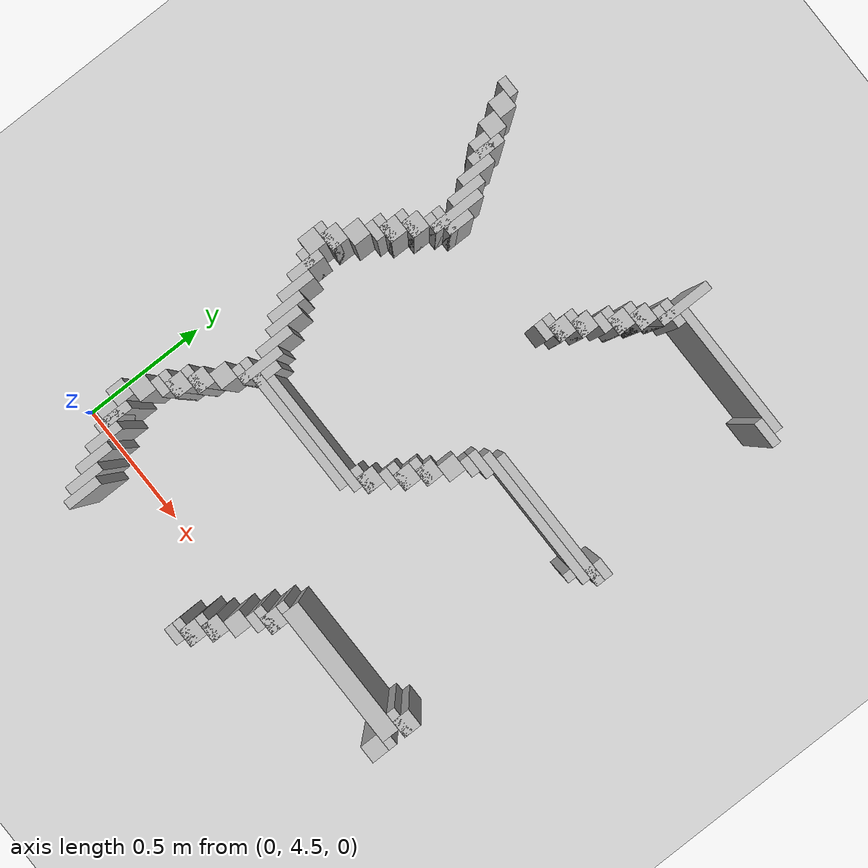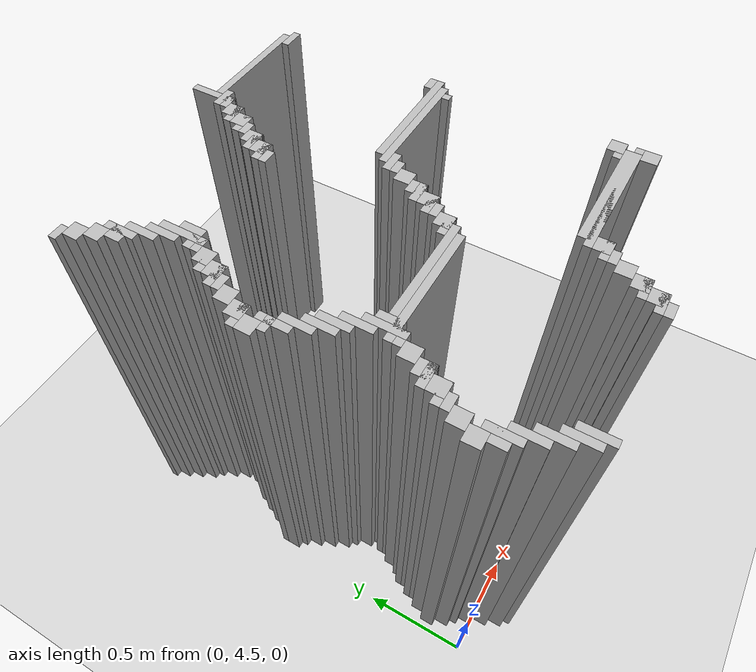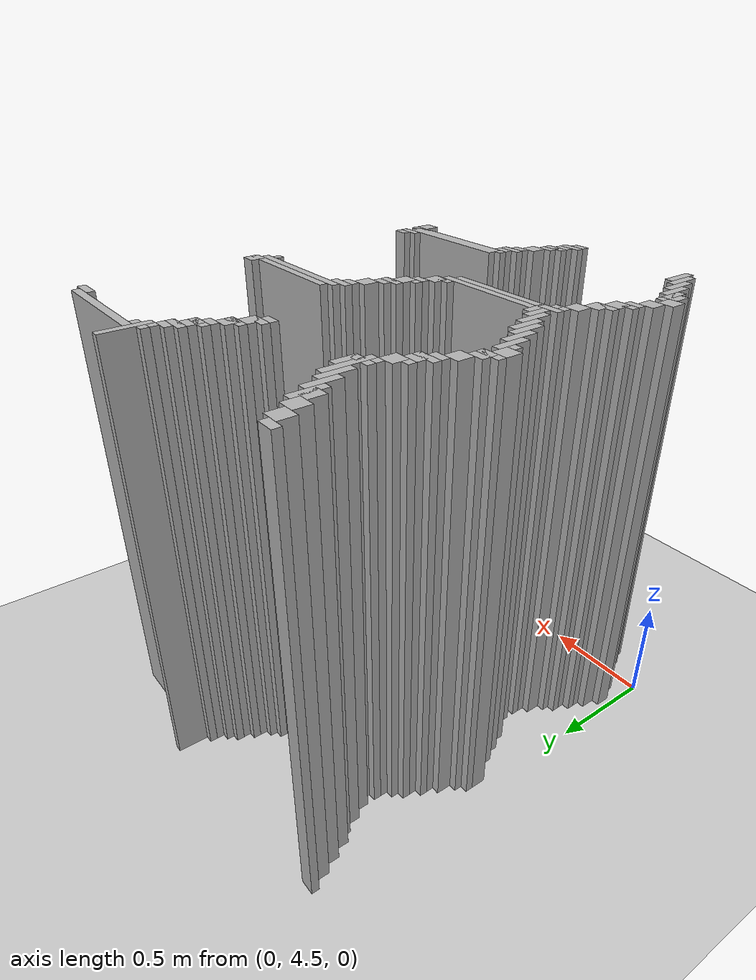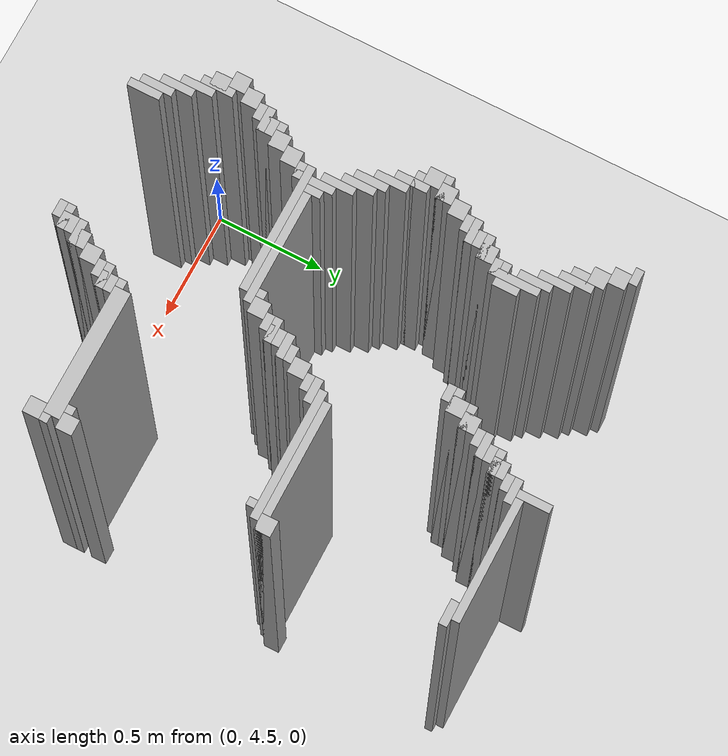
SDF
<sdf version="1.6">
 <world name="slam_world">
  <model name="ground_plane">
   <static>true</static>
   <link name="link">
    <collision name="collision">
     <geometry><plane><normal>0 0 1</normal><size>100 100</size></plane></geometry>
    </collision>
    <visual name="visual">
     <geometry><plane><normal>0 0 1</normal><size>100 100</size></plane></geometry>
     <material>
      <ambient>0.8 0.8 0.8 1</ambient>
      <diffuse>0.8 0.8 0.8 1</diffuse>
      <specular>0.8 0.8 0.8 1</specular>
     </material>
    </visual>
   </link>
  </model>
  <model name="wall_3665">
   <static>true</static>
   <pose>1.0266821345707655 6.403712296983758 1.0 0 0 0</pose>
   <link name="link">
    <collision name="collision">
     <geometry><box><size>0.03480278422273782 0.2088167053364269 2.0</size></box></geometry>
    </collision>
    <visual name="visual">
     <geometry><box><size>0.03480278422273782 0.2088167053364269 2.0</size></box></geometry>
     <material><ambient>0.5 0.5 0.5 1</ambient><diffuse>0.7 0.7 0.7 1</diffuse></material>
    </visual>
   </link>
  </model>
  <model name="wall_3701">
   <static>true</static>
   <pose>0.06960556844547564 6.386310904872389 1.0 0 0 0</pose>
   <link name="link">
    <collision name="collision">
     <geometry><box><size>0.06960556844547564 0.03480278422273782 2.0</size></box></geometry>
    </collision>
    <visual name="visual">
     <geometry><box><size>0.06960556844547564 0.03480278422273782 2.0</size></box></geometry>
     <material><ambient>0.5 0.5 0.5 1</ambient><diffuse>0.7 0.7 0.7 1</diffuse></material>
    </visual>
   </link>
  </model>
  <model name="wall_3702">
   <static>true</static>
   <pose>1.3051044083526682 6.386310904872389 1.0 0 0 0</pose>
   <link name="link">
    <collision name="collision">
     <geometry><box><size>0.5220417633410672 0.03480278422273782 2.0</size></box></geometry>
    </collision>
    <visual name="visual">
     <geometry><box><size>0.5220417633410672 0.03480278422273782 2.0</size></box></geometry>
     <material><ambient>0.5 0.5 0.5 1</ambient><diffuse>0.7 0.7 0.7 1</diffuse></material>
    </visual>
   </link>
  </model>
  <model name="wall_3709">
   <static>true</static>
   <pose>0.10440835266821345 6.334106728538282 1.0 0 0 0</pose>
   <link name="link">
    <collision name="collision">
     <geometry><box><size>0.06960556844547564 0.06960556844547564 2.0</size></box></geometry>
    </collision>
    <visual name="visual">
     <geometry><box><size>0.06960556844547564 0.06960556844547564 2.0</size></box></geometry>
     <material><ambient>0.5 0.5 0.5 1</ambient><diffuse>0.7 0.7 0.7 1</diffuse></material>
    </visual>
   </link>
  </model>
  <model name="wall_3710">
   <static>true</static>
   <pose>1.0266821345707655 6.351508120649652 1.0 0 0 0</pose>
   <link name="link">
    <collision name="collision">
     <geometry><box><size>0.10440835266821345 0.03480278422273782 2.0</size></box></geometry>
    </collision>
    <visual name="visual">
     <geometry><box><size>0.10440835266821345 0.03480278422273782 2.0</size></box></geometry>
     <material><ambient>0.5 0.5 0.5 1</ambient><diffuse>0.7 0.7 0.7 1</diffuse></material>
    </visual>
   </link>
  </model>
  <model name="wall_3711">
   <static>true</static>
   <pose>1.548723897911833 6.351508120649652 1.0 0 0 0</pose>
   <link name="link">
    <collision name="collision">
     <geometry><box><size>0.10440835266821345 0.03480278422273782 2.0</size></box></geometry>
    </collision>
    <visual name="visual">
     <geometry><box><size>0.10440835266821345 0.03480278422273782 2.0</size></box></geometry>
     <material><ambient>0.5 0.5 0.5 1</ambient><diffuse>0.7 0.7 0.7 1</diffuse></material>
    </visual>
   </link>
  </model>
  <model name="wall_3727">
   <static>true</static>
   <pose>1.0092807424593968 6.316705336426914 1.0 0 0 0</pose>
   <link name="link">
    <collision name="collision">
     <geometry><box><size>0.06960556844547564 0.03480278422273782 2.0</size></box></geometry>
    </collision>
    <visual name="visual">
     <geometry><box><size>0.06960556844547564 0.03480278422273782 2.0</size></box></geometry>
     <material><ambient>0.5 0.5 0.5 1</ambient><diffuse>0.7 0.7 0.7 1</diffuse></material>
    </visual>
   </link>
  </model>
  <model name="wall_3736">
   <static>true</static>
   <pose>0.13921113689095127 6.2645011600928076 1.0 0 0 0</pose>
   <link name="link">
    <collision name="collision">
     <geometry><box><size>0.06960556844547564 0.06960556844547564 2.0</size></box></geometry>
    </collision>
    <visual name="visual">
     <geometry><box><size>0.06960556844547564 0.06960556844547564 2.0</size></box></geometry>
     <material><ambient>0.5 0.5 0.5 1</ambient><diffuse>0.7 0.7 0.7 1</diffuse></material>
    </visual>
   </link>
  </model>
  <model name="wall_3737">
   <static>true</static>
   <pose>0.974477958236659 6.2645011600928076 1.0 0 0 0</pose>
   <link name="link">
    <collision name="collision">
     <geometry><box><size>0.06960556844547564 0.06960556844547564 2.0</size></box></geometry>
    </collision>
    <visual name="visual">
     <geometry><box><size>0.06960556844547564 0.06960556844547564 2.0</size></box></geometry>
     <material><ambient>0.5 0.5 0.5 1</ambient><diffuse>0.7 0.7 0.7 1</diffuse></material>
    </visual>
   </link>
  </model>
  <model name="wall_3754">
   <static>true</static>
   <pose>0.191415313225058 6.194895591647332 1.0 0 0 0</pose>
   <link name="link">
    <collision name="collision">
     <geometry><box><size>0.03480278422273782 0.13921113689095127 2.0</size></box></geometry>
    </collision>
    <visual name="visual">
     <geometry><box><size>0.03480278422273782 0.13921113689095127 2.0</size></box></geometry>
     <material><ambient>0.5 0.5 0.5 1</ambient><diffuse>0.7 0.7 0.7 1</diffuse></material>
    </visual>
   </link>
  </model>
  <model name="wall_3755">
   <static>true</static>
   <pose>0.95707656612529 6.247099767981438 1.0 0 0 0</pose>
   <link name="link">
    <collision name="collision">
     <geometry><box><size>0.10440835266821345 0.03480278422273782 2.0</size></box></geometry>
    </collision>
    <visual name="visual">
     <geometry><box><size>0.10440835266821345 0.03480278422273782 2.0</size></box></geometry>
     <material><ambient>0.5 0.5 0.5 1</ambient><diffuse>0.7 0.7 0.7 1</diffuse></material>
    </visual>
   </link>
  </model>
  <model name="wall_3772">
   <static>true</static>
   <pose>0.17401392111368907 6.194895591647332 1.0 0 0 0</pose>
   <link name="link">
    <collision name="collision">
     <geometry><box><size>0.06960556844547564 0.06960556844547564 2.0</size></box></geometry>
    </collision>
    <visual name="visual">
     <geometry><box><size>0.06960556844547564 0.06960556844547564 2.0</size></box></geometry>
     <material><ambient>0.5 0.5 0.5 1</ambient><diffuse>0.7 0.7 0.7 1</diffuse></material>
    </visual>
   </link>
  </model>
  <model name="wall_3773">
   <static>true</static>
   <pose>0.9396751740139211 6.194895591647332 1.0 0 0 0</pose>
   <link name="link">
    <collision name="collision">
     <geometry><box><size>0.06960556844547564 0.06960556844547564 2.0</size></box></geometry>
    </collision>
    <visual name="visual">
     <geometry><box><size>0.06960556844547564 0.06960556844547564 2.0</size></box></geometry>
     <material><ambient>0.5 0.5 0.5 1</ambient><diffuse>0.7 0.7 0.7 1</diffuse></material>
    </visual>
   </link>
  </model>
  <model name="wall_3790">
   <static>true</static>
   <pose>0.2262180974477958 6.125290023201856 1.0 0 0 0</pose>
   <link name="link">
    <collision name="collision">
     <geometry><box><size>0.03480278422273782 0.13921113689095127 2.0</size></box></geometry>
    </collision>
    <visual name="visual">
     <geometry><box><size>0.03480278422273782 0.13921113689095127 2.0</size></box></geometry>
     <material><ambient>0.5 0.5 0.5 1</ambient><diffuse>0.7 0.7 0.7 1</diffuse></material>
    </visual>
   </link>
  </model>
  <model name="wall_3791">
   <static>true</static>
   <pose>0.9222737819025522 6.177494199535962 1.0 0 0 0</pose>
   <link name="link">
    <collision name="collision">
     <geometry><box><size>0.10440835266821345 0.03480278422273782 2.0</size></box></geometry>
    </collision>
    <visual name="visual">
     <geometry><box><size>0.10440835266821345 0.03480278422273782 2.0</size></box></geometry>
     <material><ambient>0.5 0.5 0.5 1</ambient><diffuse>0.7 0.7 0.7 1</diffuse></material>
    </visual>
   </link>
  </model>
  <model name="wall_3808">
   <static>true</static>
   <pose>0.9048723897911832 6.142691415313225 1.0 0 0 0</pose>
   <link name="link">
    <collision name="collision">
     <geometry><box><size>0.06960556844547564 0.03480278422273782 2.0</size></box></geometry>
    </collision>
    <visual name="visual">
     <geometry><box><size>0.06960556844547564 0.03480278422273782 2.0</size></box></geometry>
     <material><ambient>0.5 0.5 0.5 1</ambient><diffuse>0.7 0.7 0.7 1</diffuse></material>
    </visual>
   </link>
  </model>
  <model name="wall_3817">
   <static>true</static>
   <pose>0.2610208816705336 6.05568445475638 1.0 0 0 0</pose>
   <link name="link">
    <collision name="collision">
     <geometry><box><size>0.03480278422273782 0.13921113689095127 2.0</size></box></geometry>
    </collision>
    <visual name="visual">
     <geometry><box><size>0.03480278422273782 0.13921113689095127 2.0</size></box></geometry>
     <material><ambient>0.5 0.5 0.5 1</ambient><diffuse>0.7 0.7 0.7 1</diffuse></material>
    </visual>
   </link>
  </model>
  <model name="wall_3818">
   <static>true</static>
   <pose>0.8700696055684455 6.090487238979118 1.0 0 0 0</pose>
   <link name="link">
    <collision name="collision">
     <geometry><box><size>0.06960556844547564 0.06960556844547564 2.0</size></box></geometry>
    </collision>
    <visual name="visual">
     <geometry><box><size>0.06960556844547564 0.06960556844547564 2.0</size></box></geometry>
     <material><ambient>0.5 0.5 0.5 1</ambient><diffuse>0.7 0.7 0.7 1</diffuse></material>
    </visual>
   </link>
  </model>
  <model name="wall_3835">
   <static>true</static>
   <pose>0.29582366589327147 5.986078886310905 1.0 0 0 0</pose>
   <link name="link">
    <collision name="collision">
     <geometry><box><size>0.03480278422273782 0.2088167053364269 2.0</size></box></geometry>
    </collision>
    <visual name="visual">
     <geometry><box><size>0.03480278422273782 0.2088167053364269 2.0</size></box></geometry>
     <material><ambient>0.5 0.5 0.5 1</ambient><diffuse>0.7 0.7 0.7 1</diffuse></material>
    </visual>
   </link>
  </model>
  <model name="wall_3836">
   <static>true</static>
   <pose>0.8526682134570766 6.073085846867749 1.0 0 0 0</pose>
   <link name="link">
    <collision name="collision">
     <geometry><box><size>0.10440835266821345 0.03480278422273782 2.0</size></box></geometry>
    </collision>
    <visual name="visual">
     <geometry><box><size>0.10440835266821345 0.03480278422273782 2.0</size></box></geometry>
     <material><ambient>0.5 0.5 0.5 1</ambient><diffuse>0.7 0.7 0.7 1</diffuse></material>
    </visual>
   </link>
  </model>
  <model name="wall_3853">
   <static>true</static>
   <pose>0.8352668213457076 6.020881670533642 1.0 0 0 0</pose>
   <link name="link">
    <collision name="collision">
     <geometry><box><size>0.06960556844547564 0.06960556844547564 2.0</size></box></geometry>
    </collision>
    <visual name="visual">
     <geometry><box><size>0.06960556844547564 0.06960556844547564 2.0</size></box></geometry>
     <material><ambient>0.5 0.5 0.5 1</ambient><diffuse>0.7 0.7 0.7 1</diffuse></material>
    </visual>
   </link>
  </model>
  <model name="wall_3862">
   <static>true</static>
   <pose>0.3306264501160093 5.968677494199536 1.0 0 0 0</pose>
   <link name="link">
    <collision name="collision">
     <geometry><box><size>0.03480278422273782 0.10440835266821345 2.0</size></box></geometry>
    </collision>
    <visual name="visual">
     <geometry><box><size>0.03480278422273782 0.10440835266821345 2.0</size></box></geometry>
     <material><ambient>0.5 0.5 0.5 1</ambient><diffuse>0.7 0.7 0.7 1</diffuse></material>
    </visual>
   </link>
  </model>
  <model name="wall_3863">
   <static>true</static>
   <pose>0.8178654292343387 6.003480278422273 1.0 0 0 0</pose>
   <link name="link">
    <collision name="collision">
     <geometry><box><size>0.10440835266821345 0.03480278422273782 2.0</size></box></geometry>
    </collision>
    <visual name="visual">
     <geometry><box><size>0.10440835266821345 0.03480278422273782 2.0</size></box></geometry>
     <material><ambient>0.5 0.5 0.5 1</ambient><diffuse>0.7 0.7 0.7 1</diffuse></material>
    </visual>
   </link>
  </model>
  <model name="wall_3877">
   <static>true</static>
   <pose>0.8004640371229698 5.968677494199536 1.0 0 0 0</pose>
   <link name="link">
    <collision name="collision">
     <geometry><box><size>0.06960556844547564 0.03480278422273782 2.0</size></box></geometry>
    </collision>
    <visual name="visual">
     <geometry><box><size>0.06960556844547564 0.03480278422273782 2.0</size></box></geometry>
     <material><ambient>0.5 0.5 0.5 1</ambient><diffuse>0.7 0.7 0.7 1</diffuse></material>
    </visual>
   </link>
  </model>
  <model name="wall_3887">
   <static>true</static>
   <pose>0.29582366589327147 5.933874709976798 1.0 0 0 0</pose>
   <link name="link">
    <collision name="collision">
     <geometry><box><size>0.10440835266821345 0.03480278422273782 2.0</size></box></geometry>
    </collision>
    <visual name="visual">
     <geometry><box><size>0.10440835266821345 0.03480278422273782 2.0</size></box></geometry>
     <material><ambient>0.5 0.5 0.5 1</ambient><diffuse>0.7 0.7 0.7 1</diffuse></material>
    </visual>
   </link>
  </model>
  <model name="wall_3898">
   <static>true</static>
   <pose>0.27842227378190254 5.89907192575406 1.0 0 0 0</pose>
   <link name="link">
    <collision name="collision">
     <geometry><box><size>0.06960556844547564 0.03480278422273782 2.0</size></box></geometry>
    </collision>
    <visual name="visual">
     <geometry><box><size>0.06960556844547564 0.03480278422273782 2.0</size></box></geometry>
     <material><ambient>0.5 0.5 0.5 1</ambient><diffuse>0.7 0.7 0.7 1</diffuse></material>
    </visual>
   </link>
  </model>
  <model name="wall_3903">
   <static>true</static>
   <pose>0.24361948955916474 5.846867749419953 1.0 0 0 0</pose>
   <link name="link">
    <collision name="collision">
     <geometry><box><size>0.06960556844547564 0.06960556844547564 2.0</size></box></geometry>
    </collision>
    <visual name="visual">
     <geometry><box><size>0.06960556844547564 0.06960556844547564 2.0</size></box></geometry>
     <material><ambient>0.5 0.5 0.5 1</ambient><diffuse>0.7 0.7 0.7 1</diffuse></material>
    </visual>
   </link>
  </model>
  <model name="wall_3914">
   <static>true</static>
   <pose>0.2262180974477958 5.8294663573085845 1.0 0 0 0</pose>
   <link name="link">
    <collision name="collision">
     <geometry><box><size>0.10440835266821345 0.03480278422273782 2.0</size></box></geometry>
    </collision>
    <visual name="visual">
     <geometry><box><size>0.10440835266821345 0.03480278422273782 2.0</size></box></geometry>
     <material><ambient>0.5 0.5 0.5 1</ambient><diffuse>0.7 0.7 0.7 1</diffuse></material>
    </visual>
   </link>
  </model>
  <model name="wall_3925">
   <static>true</static>
   <pose>0.2088167053364269 5.7772621809744775 1.0 0 0 0</pose>
   <link name="link">
    <collision name="collision">
     <geometry><box><size>0.06960556844547564 0.06960556844547564 2.0</size></box></geometry>
    </collision>
    <visual name="visual">
     <geometry><box><size>0.06960556844547564 0.06960556844547564 2.0</size></box></geometry>
     <material><ambient>0.5 0.5 0.5 1</ambient><diffuse>0.7 0.7 0.7 1</diffuse></material>
    </visual>
   </link>
  </model>
  <model name="wall_3936">
   <static>true</static>
   <pose>0.191415313225058 5.759860788863109 1.0 0 0 0</pose>
   <link name="link">
    <collision name="collision">
     <geometry><box><size>0.10440835266821345 0.03480278422273782 2.0</size></box></geometry>
    </collision>
    <visual name="visual">
     <geometry><box><size>0.10440835266821345 0.03480278422273782 2.0</size></box></geometry>
     <material><ambient>0.5 0.5 0.5 1</ambient><diffuse>0.7 0.7 0.7 1</diffuse></material>
    </visual>
   </link>
  </model>
  <model name="wall_3947">
   <static>true</static>
   <pose>0.17401392111368907 5.725058004640371 1.0 0 0 0</pose>
   <link name="link">
    <collision name="collision">
     <geometry><box><size>0.06960556844547564 0.03480278422273782 2.0</size></box></geometry>
    </collision>
    <visual name="visual">
     <geometry><box><size>0.06960556844547564 0.03480278422273782 2.0</size></box></geometry>
     <material><ambient>0.5 0.5 0.5 1</ambient><diffuse>0.7 0.7 0.7 1</diffuse></material>
    </visual>
   </link>
  </model>
  <model name="wall_3956">
   <static>true</static>
   <pose>0.13921113689095127 5.672853828306264 1.0 0 0 0</pose>
   <link name="link">
    <collision name="collision">
     <geometry><box><size>0.06960556844547564 0.06960556844547564 2.0</size></box></geometry>
    </collision>
    <visual name="visual">
     <geometry><box><size>0.06960556844547564 0.06960556844547564 2.0</size></box></geometry>
     <material><ambient>0.5 0.5 0.5 1</ambient><diffuse>0.7 0.7 0.7 1</diffuse></material>
    </visual>
   </link>
  </model>
  <model name="wall_3967">
   <static>true</static>
   <pose>0.10440835266821345 5.603248259860789 1.0 0 0 0</pose>
   <link name="link">
    <collision name="collision">
     <geometry><box><size>0.06960556844547564 0.06960556844547564 2.0</size></box></geometry>
    </collision>
    <visual name="visual">
     <geometry><box><size>0.06960556844547564 0.06960556844547564 2.0</size></box></geometry>
     <material><ambient>0.5 0.5 0.5 1</ambient><diffuse>0.7 0.7 0.7 1</diffuse></material>
    </visual>
   </link>
  </model>
  <model name="wall_3968">
   <static>true</static>
   <pose>1.5661252900232019 5.603248259860789 1.0 0 0 0</pose>
   <link name="link">
    <collision name="collision">
     <geometry><box><size>0.06960556844547564 0.06960556844547564 2.0</size></box></geometry>
    </collision>
    <visual name="visual">
     <geometry><box><size>0.06960556844547564 0.06960556844547564 2.0</size></box></geometry>
     <material><ambient>0.5 0.5 0.5 1</ambient><diffuse>0.7 0.7 0.7 1</diffuse></material>
    </visual>
   </link>
  </model>
  <model name="wall_3978">
   <static>true</static>
   <pose>0.08700696055684454 5.58584686774942 1.0 0 0 0</pose>
   <link name="link">
    <collision name="collision">
     <geometry><box><size>0.10440835266821345 0.03480278422273782 2.0</size></box></geometry>
    </collision>
    <visual name="visual">
     <geometry><box><size>0.10440835266821345 0.03480278422273782 2.0</size></box></geometry>
     <material><ambient>0.5 0.5 0.5 1</ambient><diffuse>0.7 0.7 0.7 1</diffuse></material>
    </visual>
   </link>
  </model>
  <model name="wall_3979">
   <static>true</static>
   <pose>1.322505800464037 5.58584686774942 1.0 0 0 0</pose>
   <link name="link">
    <collision name="collision">
     <geometry><box><size>0.5568445475638051 0.03480278422273782 2.0</size></box></geometry>
    </collision>
    <visual name="visual">
     <geometry><box><size>0.5568445475638051 0.03480278422273782 2.0</size></box></geometry>
     <material><ambient>0.5 0.5 0.5 1</ambient><diffuse>0.7 0.7 0.7 1</diffuse></material>
    </visual>
   </link>
  </model>
  <model name="wall_3991">
   <static>true</static>
   <pose>0.06960556844547564 5.533642691415313 1.0 0 0 0</pose>
   <link name="link">
    <collision name="collision">
     <geometry><box><size>0.06960556844547564 0.06960556844547564 2.0</size></box></geometry>
    </collision>
    <visual name="visual">
     <geometry><box><size>0.06960556844547564 0.06960556844547564 2.0</size></box></geometry>
     <material><ambient>0.5 0.5 0.5 1</ambient><diffuse>0.7 0.7 0.7 1</diffuse></material>
    </visual>
   </link>
  </model>
  <model name="wall_3992">
   <static>true</static>
   <pose>1.2877030162412992 5.551044083526682 1.0 0 0 0</pose>
   <link name="link">
    <collision name="collision">
     <geometry><box><size>0.5568445475638051 0.03480278422273782 2.0</size></box></geometry>
    </collision>
    <visual name="visual">
     <geometry><box><size>0.5568445475638051 0.03480278422273782 2.0</size></box></geometry>
     <material><ambient>0.5 0.5 0.5 1</ambient><diffuse>0.7 0.7 0.7 1</diffuse></material>
    </visual>
   </link>
  </model>
  <model name="wall_4003">
   <static>true</static>
   <pose>0.12180974477958237 5.464037122969837 1.0 0 0 0</pose>
   <link name="link">
    <collision name="collision">
     <geometry><box><size>0.03480278422273782 0.13921113689095127 2.0</size></box></geometry>
    </collision>
    <visual name="visual">
     <geometry><box><size>0.03480278422273782 0.13921113689095127 2.0</size></box></geometry>
     <material><ambient>0.5 0.5 0.5 1</ambient><diffuse>0.7 0.7 0.7 1</diffuse></material>
    </visual>
   </link>
  </model>
  <model name="wall_4004">
   <static>true</static>
   <pose>1.0266821345707655 5.516241299303944 1.0 0 0 0</pose>
   <link name="link">
    <collision name="collision">
     <geometry><box><size>0.10440835266821345 0.03480278422273782 2.0</size></box></geometry>
    </collision>
    <visual name="visual">
     <geometry><box><size>0.10440835266821345 0.03480278422273782 2.0</size></box></geometry>
     <material><ambient>0.5 0.5 0.5 1</ambient><diffuse>0.7 0.7 0.7 1</diffuse></material>
    </visual>
   </link>
  </model>
  <model name="wall_4005">
   <static>true</static>
   <pose>1.513921113689095 5.516241299303944 1.0 0 0 0</pose>
   <link name="link">
    <collision name="collision">
     <geometry><box><size>0.03480278422273782 0.03480278422273782 2.0</size></box></geometry>
    </collision>
    <visual name="visual">
     <geometry><box><size>0.03480278422273782 0.03480278422273782 2.0</size></box></geometry>
     <material><ambient>0.5 0.5 0.5 1</ambient><diffuse>0.7 0.7 0.7 1</diffuse></material>
    </visual>
   </link>
  </model>
  <model name="wall_4022">
   <static>true</static>
   <pose>0.10440835266821345 5.481438515081206 1.0 0 0 0</pose>
   <link name="link">
    <collision name="collision">
     <geometry><box><size>0.06960556844547564 0.03480278422273782 2.0</size></box></geometry>
    </collision>
    <visual name="visual">
     <geometry><box><size>0.06960556844547564 0.03480278422273782 2.0</size></box></geometry>
     <material><ambient>0.5 0.5 0.5 1</ambient><diffuse>0.7 0.7 0.7 1</diffuse></material>
    </visual>
   </link>
  </model>
  <model name="wall_4023">
   <static>true</static>
   <pose>1.0092807424593968 5.481438515081206 1.0 0 0 0</pose>
   <link name="link">
    <collision name="collision">
     <geometry><box><size>0.06960556844547564 0.03480278422273782 2.0</size></box></geometry>
    </collision>
    <visual name="visual">
     <geometry><box><size>0.06960556844547564 0.03480278422273782 2.0</size></box></geometry>
     <material><ambient>0.5 0.5 0.5 1</ambient><diffuse>0.7 0.7 0.7 1</diffuse></material>
    </visual>
   </link>
  </model>
  <model name="wall_4037">
   <static>true</static>
   <pose>0.15661252900232017 5.3944315545243615 1.0 0 0 0</pose>
   <link name="link">
    <collision name="collision">
     <geometry><box><size>0.03480278422273782 0.13921113689095127 2.0</size></box></geometry>
    </collision>
    <visual name="visual">
     <geometry><box><size>0.03480278422273782 0.13921113689095127 2.0</size></box></geometry>
     <material><ambient>0.5 0.5 0.5 1</ambient><diffuse>0.7 0.7 0.7 1</diffuse></material>
    </visual>
   </link>
  </model>
  <model name="wall_4038">
   <static>true</static>
   <pose>0.974477958236659 5.4292343387471 1.0 0 0 0</pose>
   <link name="link">
    <collision name="collision">
     <geometry><box><size>0.06960556844547564 0.06960556844547564 2.0</size></box></geometry>
    </collision>
    <visual name="visual">
     <geometry><box><size>0.06960556844547564 0.06960556844547564 2.0</size></box></geometry>
     <material><ambient>0.5 0.5 0.5 1</ambient><diffuse>0.7 0.7 0.7 1</diffuse></material>
    </visual>
   </link>
  </model>
  <model name="wall_4052">
   <static>true</static>
   <pose>0.191415313225058 5.324825986078886 1.0 0 0 0</pose>
   <link name="link">
    <collision name="collision">
     <geometry><box><size>0.03480278422273782 0.13921113689095127 2.0</size></box></geometry>
    </collision>
    <visual name="visual">
     <geometry><box><size>0.03480278422273782 0.13921113689095127 2.0</size></box></geometry>
     <material><ambient>0.5 0.5 0.5 1</ambient><diffuse>0.7 0.7 0.7 1</diffuse></material>
    </visual>
   </link>
  </model>
  <model name="wall_4053">
   <static>true</static>
   <pose>0.9396751740139211 5.359628770301624 1.0 0 0 0</pose>
   <link name="link">
    <collision name="collision">
     <geometry><box><size>0.06960556844547564 0.06960556844547564 2.0</size></box></geometry>
    </collision>
    <visual name="visual">
     <geometry><box><size>0.06960556844547564 0.06960556844547564 2.0</size></box></geometry>
     <material><ambient>0.5 0.5 0.5 1</ambient><diffuse>0.7 0.7 0.7 1</diffuse></material>
    </visual>
   </link>
  </model>
  <model name="wall_4067">
   <static>true</static>
   <pose>0.2262180974477958 5.290023201856148 1.0 0 0 0</pose>
   <link name="link">
    <collision name="collision">
     <geometry><box><size>0.03480278422273782 0.13921113689095127 2.0</size></box></geometry>
    </collision>
    <visual name="visual">
     <geometry><box><size>0.03480278422273782 0.13921113689095127 2.0</size></box></geometry>
     <material><ambient>0.5 0.5 0.5 1</ambient><diffuse>0.7 0.7 0.7 1</diffuse></material>
    </visual>
   </link>
  </model>
  <model name="wall_4068">
   <static>true</static>
   <pose>0.9222737819025522 5.342227378190255 1.0 0 0 0</pose>
   <link name="link">
    <collision name="collision">
     <geometry><box><size>0.10440835266821345 0.03480278422273782 2.0</size></box></geometry>
    </collision>
    <visual name="visual">
     <geometry><box><size>0.10440835266821345 0.03480278422273782 2.0</size></box></geometry>
     <material><ambient>0.5 0.5 0.5 1</ambient><diffuse>0.7 0.7 0.7 1</diffuse></material>
    </visual>
   </link>
  </model>
  <model name="wall_4082">
   <static>true</static>
   <pose>0.9048723897911832 5.290023201856148 1.0 0 0 0</pose>
   <link name="link">
    <collision name="collision">
     <geometry><box><size>0.06960556844547564 0.06960556844547564 2.0</size></box></geometry>
    </collision>
    <visual name="visual">
     <geometry><box><size>0.06960556844547564 0.06960556844547564 2.0</size></box></geometry>
     <material><ambient>0.5 0.5 0.5 1</ambient><diffuse>0.7 0.7 0.7 1</diffuse></material>
    </visual>
   </link>
  </model>
  <model name="wall_4093">
   <static>true</static>
   <pose>0.2610208816705336 5.220417633410673 1.0 0 0 0</pose>
   <link name="link">
    <collision name="collision">
     <geometry><box><size>0.03480278422273782 0.13921113689095127 2.0</size></box></geometry>
    </collision>
    <visual name="visual">
     <geometry><box><size>0.03480278422273782 0.13921113689095127 2.0</size></box></geometry>
     <material><ambient>0.5 0.5 0.5 1</ambient><diffuse>0.7 0.7 0.7 1</diffuse></material>
    </visual>
   </link>
  </model>
  <model name="wall_4094">
   <static>true</static>
   <pose>0.8874709976798143 5.27262180974478 1.0 0 0 0</pose>
   <link name="link">
    <collision name="collision">
     <geometry><box><size>0.10440835266821345 0.03480278422273782 2.0</size></box></geometry>
    </collision>
    <visual name="visual">
     <geometry><box><size>0.10440835266821345 0.03480278422273782 2.0</size></box></geometry>
     <material><ambient>0.5 0.5 0.5 1</ambient><diffuse>0.7 0.7 0.7 1</diffuse></material>
    </visual>
   </link>
  </model>
  <model name="wall_4108">
   <static>true</static>
   <pose>0.8700696055684455 5.237819025522041 1.0 0 0 0</pose>
   <link name="link">
    <collision name="collision">
     <geometry><box><size>0.06960556844547564 0.03480278422273782 2.0</size></box></geometry>
    </collision>
    <visual name="visual">
     <geometry><box><size>0.06960556844547564 0.03480278422273782 2.0</size></box></geometry>
     <material><ambient>0.5 0.5 0.5 1</ambient><diffuse>0.7 0.7 0.7 1</diffuse></material>
    </visual>
   </link>
  </model>
  <model name="wall_4116">
   <static>true</static>
   <pose>0.29582366589327147 5.133410672853828 1.0 0 0 0</pose>
   <link name="link">
    <collision name="collision">
     <geometry><box><size>0.03480278422273782 0.17401392111368907 2.0</size></box></geometry>
    </collision>
    <visual name="visual">
     <geometry><box><size>0.03480278422273782 0.17401392111368907 2.0</size></box></geometry>
     <material><ambient>0.5 0.5 0.5 1</ambient><diffuse>0.7 0.7 0.7 1</diffuse></material>
    </visual>
   </link>
  </model>
  <model name="wall_4117">
   <static>true</static>
   <pose>0.8352668213457076 5.185614849187935 1.0 0 0 0</pose>
   <link name="link">
    <collision name="collision">
     <geometry><box><size>0.06960556844547564 0.06960556844547564 2.0</size></box></geometry>
    </collision>
    <visual name="visual">
     <geometry><box><size>0.06960556844547564 0.06960556844547564 2.0</size></box></geometry>
     <material><ambient>0.5 0.5 0.5 1</ambient><diffuse>0.7 0.7 0.7 1</diffuse></material>
    </visual>
   </link>
  </model>
  <model name="wall_4131">
   <static>true</static>
   <pose>0.3306264501160093 5.133410672853828 1.0 0 0 0</pose>
   <link name="link">
    <collision name="collision">
     <geometry><box><size>0.03480278422273782 0.10440835266821345 2.0</size></box></geometry>
    </collision>
    <visual name="visual">
     <geometry><box><size>0.03480278422273782 0.10440835266821345 2.0</size></box></geometry>
     <material><ambient>0.5 0.5 0.5 1</ambient><diffuse>0.7 0.7 0.7 1</diffuse></material>
    </visual>
   </link>
  </model>
  <model name="wall_4132">
   <static>true</static>
   <pose>0.8178654292343387 5.168213457076566 1.0 0 0 0</pose>
   <link name="link">
    <collision name="collision">
     <geometry><box><size>0.10440835266821345 0.03480278422273782 2.0</size></box></geometry>
    </collision>
    <visual name="visual">
     <geometry><box><size>0.10440835266821345 0.03480278422273782 2.0</size></box></geometry>
     <material><ambient>0.5 0.5 0.5 1</ambient><diffuse>0.7 0.7 0.7 1</diffuse></material>
    </visual>
   </link>
  </model>
  <model name="wall_4146">
   <static>true</static>
   <pose>0.5916473317865429 5.133410672853828 1.0 0 0 0</pose>
   <link name="link">
    <collision name="collision">
     <geometry><box><size>0.4872389791183295 0.03480278422273782 2.0</size></box></geometry>
    </collision>
    <visual name="visual">
     <geometry><box><size>0.4872389791183295 0.03480278422273782 2.0</size></box></geometry>
     <material><ambient>0.5 0.5 0.5 1</ambient><diffuse>0.7 0.7 0.7 1</diffuse></material>
    </visual>
   </link>
  </model>
  <model name="wall_4157">
   <static>true</static>
   <pose>0.5220417633410672 5.09860788863109 1.0 0 0 0</pose>
   <link name="link">
    <collision name="collision">
     <geometry><box><size>0.5568445475638051 0.03480278422273782 2.0</size></box></geometry>
    </collision>
    <visual name="visual">
     <geometry><box><size>0.5568445475638051 0.03480278422273782 2.0</size></box></geometry>
     <material><ambient>0.5 0.5 0.5 1</ambient><diffuse>0.7 0.7 0.7 1</diffuse></material>
    </visual>
   </link>
  </model>
  <model name="wall_4170">
   <static>true</static>
   <pose>0.27842227378190254 5.0638051044083525 1.0 0 0 0</pose>
   <link name="link">
    <collision name="collision">
     <geometry><box><size>0.06960556844547564 0.03480278422273782 2.0</size></box></geometry>
    </collision>
    <visual name="visual">
     <geometry><box><size>0.06960556844547564 0.03480278422273782 2.0</size></box></geometry>
     <material><ambient>0.5 0.5 0.5 1</ambient><diffuse>0.7 0.7 0.7 1</diffuse></material>
    </visual>
   </link>
  </model>
  <model name="wall_4185">
   <static>true</static>
   <pose>0.24361948955916474 5.0116009280742455 1.0 0 0 0</pose>
   <link name="link">
    <collision name="collision">
     <geometry><box><size>0.06960556844547564 0.06960556844547564 2.0</size></box></geometry>
    </collision>
    <visual name="visual">
     <geometry><box><size>0.06960556844547564 0.06960556844547564 2.0</size></box></geometry>
     <material><ambient>0.5 0.5 0.5 1</ambient><diffuse>0.7 0.7 0.7 1</diffuse></material>
    </visual>
   </link>
  </model>
  <model name="wall_4200">
   <static>true</static>
   <pose>0.2088167053364269 4.94199535962877 1.0 0 0 0</pose>
   <link name="link">
    <collision name="collision">
     <geometry><box><size>0.06960556844547564 0.06960556844547564 2.0</size></box></geometry>
    </collision>
    <visual name="visual">
     <geometry><box><size>0.06960556844547564 0.06960556844547564 2.0</size></box></geometry>
     <material><ambient>0.5 0.5 0.5 1</ambient><diffuse>0.7 0.7 0.7 1</diffuse></material>
    </visual>
   </link>
  </model>
  <model name="wall_4215">
   <static>true</static>
   <pose>0.191415313225058 4.924593967517401 1.0 0 0 0</pose>
   <link name="link">
    <collision name="collision">
     <geometry><box><size>0.10440835266821345 0.03480278422273782 2.0</size></box></geometry>
    </collision>
    <visual name="visual">
     <geometry><box><size>0.10440835266821345 0.03480278422273782 2.0</size></box></geometry>
     <material><ambient>0.5 0.5 0.5 1</ambient><diffuse>0.7 0.7 0.7 1</diffuse></material>
    </visual>
   </link>
  </model>
  <model name="wall_4230">
   <static>true</static>
   <pose>0.17401392111368907 4.872389791183294 1.0 0 0 0</pose>
   <link name="link">
    <collision name="collision">
     <geometry><box><size>0.06960556844547564 0.06960556844547564 2.0</size></box></geometry>
    </collision>
    <visual name="visual">
     <geometry><box><size>0.06960556844547564 0.06960556844547564 2.0</size></box></geometry>
     <material><ambient>0.5 0.5 0.5 1</ambient><diffuse>0.7 0.7 0.7 1</diffuse></material>
    </visual>
   </link>
  </model>
  <model name="wall_4241">
   <static>true</static>
   <pose>0.15661252900232017 4.854988399071925 1.0 0 0 0</pose>
   <link name="link">
    <collision name="collision">
     <geometry><box><size>0.10440835266821345 0.03480278422273782 2.0</size></box></geometry>
    </collision>
    <visual name="visual">
     <geometry><box><size>0.10440835266821345 0.03480278422273782 2.0</size></box></geometry>
     <material><ambient>0.5 0.5 0.5 1</ambient><diffuse>0.7 0.7 0.7 1</diffuse></material>
    </visual>
   </link>
  </model>
  <model name="wall_4256">
   <static>true</static>
   <pose>0.13921113689095127 4.820185614849188 1.0 0 0 0</pose>
   <link name="link">
    <collision name="collision">
     <geometry><box><size>0.06960556844547564 0.03480278422273782 2.0</size></box></geometry>
    </collision>
    <visual name="visual">
     <geometry><box><size>0.06960556844547564 0.03480278422273782 2.0</size></box></geometry>
     <material><ambient>0.5 0.5 0.5 1</ambient><diffuse>0.7 0.7 0.7 1</diffuse></material>
    </visual>
   </link>
  </model>
  <model name="wall_4265">
   <static>true</static>
   <pose>0.10440835266821345 4.767981438515081 1.0 0 0 0</pose>
   <link name="link">
    <collision name="collision">
     <geometry><box><size>0.06960556844547564 0.06960556844547564 2.0</size></box></geometry>
    </collision>
    <visual name="visual">
     <geometry><box><size>0.06960556844547564 0.06960556844547564 2.0</size></box></geometry>
     <material><ambient>0.5 0.5 0.5 1</ambient><diffuse>0.7 0.7 0.7 1</diffuse></material>
    </visual>
   </link>
  </model>
  <model name="wall_4266">
   <static>true</static>
   <pose>1.5661252900232019 4.767981438515081 1.0 0 0 0</pose>
   <link name="link">
    <collision name="collision">
     <geometry><box><size>0.06960556844547564 0.06960556844547564 2.0</size></box></geometry>
    </collision>
    <visual name="visual">
     <geometry><box><size>0.06960556844547564 0.06960556844547564 2.0</size></box></geometry>
     <material><ambient>0.5 0.5 0.5 1</ambient><diffuse>0.7 0.7 0.7 1</diffuse></material>
    </visual>
   </link>
  </model>
  <model name="wall_4280">
   <static>true</static>
   <pose>1.548723897911833 4.750580046403712 1.0 0 0 0</pose>
   <link name="link">
    <collision name="collision">
     <geometry><box><size>0.10440835266821345 0.03480278422273782 2.0</size></box></geometry>
    </collision>
    <visual name="visual">
     <geometry><box><size>0.10440835266821345 0.03480278422273782 2.0</size></box></geometry>
     <material><ambient>0.5 0.5 0.5 1</ambient><diffuse>0.7 0.7 0.7 1</diffuse></material>
    </visual>
   </link>
  </model>
  <model name="wall_4292">
   <static>true</static>
   <pose>0.06960556844547564 4.698375870069605 1.0 0 0 0</pose>
   <link name="link">
    <collision name="collision">
     <geometry><box><size>0.06960556844547564 0.06960556844547564 2.0</size></box></geometry>
    </collision>
    <visual name="visual">
     <geometry><box><size>0.06960556844547564 0.06960556844547564 2.0</size></box></geometry>
     <material><ambient>0.5 0.5 0.5 1</ambient><diffuse>0.7 0.7 0.7 1</diffuse></material>
    </visual>
   </link>
  </model>
  <model name="wall_4293">
   <static>true</static>
   <pose>1.2877030162412992 4.698375870069605 1.0 0 0 0</pose>
   <link name="link">
    <collision name="collision">
     <geometry><box><size>0.5568445475638051 0.06960556844547564 2.0</size></box></geometry>
    </collision>
    <visual name="visual">
     <geometry><box><size>0.5568445475638051 0.06960556844547564 2.0</size></box></geometry>
     <material><ambient>0.5 0.5 0.5 1</ambient><diffuse>0.7 0.7 0.7 1</diffuse></material>
    </visual>
   </link>
  </model>
  <model name="wall_4304">
   <static>true</static>
   <pose>0.12180974477958237 4.6287703016241295 1.0 0 0 0</pose>
   <link name="link">
    <collision name="collision">
     <geometry><box><size>0.03480278422273782 0.13921113689095127 2.0</size></box></geometry>
    </collision>
    <visual name="visual">
     <geometry><box><size>0.03480278422273782 0.13921113689095127 2.0</size></box></geometry>
     <material><ambient>0.5 0.5 0.5 1</ambient><diffuse>0.7 0.7 0.7 1</diffuse></material>
    </visual>
   </link>
  </model>
  <model name="wall_4305">
   <static>true</static>
   <pose>1.2877030162412992 4.6809744779582365 1.0 0 0 0</pose>
   <link name="link">
    <collision name="collision">
     <geometry><box><size>0.6264501160092807 0.03480278422273782 2.0</size></box></geometry>
    </collision>
    <visual name="visual">
     <geometry><box><size>0.6264501160092807 0.03480278422273782 2.0</size></box></geometry>
     <material><ambient>0.5 0.5 0.5 1</ambient><diffuse>0.7 0.7 0.7 1</diffuse></material>
    </visual>
   </link>
  </model>
  <model name="wall_4315">
   <static>true</static>
   <pose>0.10440835266821345 4.6287703016241295 1.0 0 0 0</pose>
   <link name="link">
    <collision name="collision">
     <geometry><box><size>0.06960556844547564 0.06960556844547564 2.0</size></box></geometry>
    </collision>
    <visual name="visual">
     <geometry><box><size>0.06960556844547564 0.06960556844547564 2.0</size></box></geometry>
     <material><ambient>0.5 0.5 0.5 1</ambient><diffuse>0.7 0.7 0.7 1</diffuse></material>
    </visual>
   </link>
  </model>
  <model name="wall_4316">
   <static>true</static>
   <pose>1.0092807424593968 4.6287703016241295 1.0 0 0 0</pose>
   <link name="link">
    <collision name="collision">
     <geometry><box><size>0.06960556844547564 0.06960556844547564 2.0</size></box></geometry>
    </collision>
    <visual name="visual">
     <geometry><box><size>0.06960556844547564 0.06960556844547564 2.0</size></box></geometry>
     <material><ambient>0.5 0.5 0.5 1</ambient><diffuse>0.7 0.7 0.7 1</diffuse></material>
    </visual>
   </link>
  </model>
  <model name="wall_4317">
   <static>true</static>
   <pose>1.5661252900232019 4.6287703016241295 1.0 0 0 0</pose>
   <link name="link">
    <collision name="collision">
     <geometry><box><size>0.06960556844547564 0.06960556844547564 2.0</size></box></geometry>
    </collision>
    <visual name="visual">
     <geometry><box><size>0.06960556844547564 0.06960556844547564 2.0</size></box></geometry>
     <material><ambient>0.5 0.5 0.5 1</ambient><diffuse>0.7 0.7 0.7 1</diffuse></material>
    </visual>
   </link>
  </model>
  <model name="wall_4328">
   <static>true</static>
   <pose>0.15661252900232017 4.559164733178654 1.0 0 0 0</pose>
   <link name="link">
    <collision name="collision">
     <geometry><box><size>0.03480278422273782 0.13921113689095127 2.0</size></box></geometry>
    </collision>
    <visual name="visual">
     <geometry><box><size>0.03480278422273782 0.13921113689095127 2.0</size></box></geometry>
     <material><ambient>0.5 0.5 0.5 1</ambient><diffuse>0.7 0.7 0.7 1</diffuse></material>
    </visual>
   </link>
  </model>
  <model name="wall_4329">
   <static>true</static>
   <pose>0.9918793503480278 4.611368909512761 1.0 0 0 0</pose>
   <link name="link">
    <collision name="collision">
     <geometry><box><size>0.10440835266821345 0.03480278422273782 2.0</size></box></geometry>
    </collision>
    <visual name="visual">
     <geometry><box><size>0.10440835266821345 0.03480278422273782 2.0</size></box></geometry>
     <material><ambient>0.5 0.5 0.5 1</ambient><diffuse>0.7 0.7 0.7 1</diffuse></material>
    </visual>
   </link>
  </model>
  <model name="wall_4341">
   <static>true</static>
   <pose>0.974477958236659 4.576566125290023 1.0 0 0 0</pose>
   <link name="link">
    <collision name="collision">
     <geometry><box><size>0.06960556844547564 0.03480278422273782 2.0</size></box></geometry>
    </collision>
    <visual name="visual">
     <geometry><box><size>0.06960556844547564 0.03480278422273782 2.0</size></box></geometry>
     <material><ambient>0.5 0.5 0.5 1</ambient><diffuse>0.7 0.7 0.7 1</diffuse></material>
    </visual>
   </link>
  </model>
  <model name="wall_4349">
   <static>true</static>
   <pose>0.191415313225058 4.489559164733178 1.0 0 0 0</pose>
   <link name="link">
    <collision name="collision">
     <geometry><box><size>0.03480278422273782 0.13921113689095127 2.0</size></box></geometry>
    </collision>
    <visual name="visual">
     <geometry><box><size>0.03480278422273782 0.13921113689095127 2.0</size></box></geometry>
     <material><ambient>0.5 0.5 0.5 1</ambient><diffuse>0.7 0.7 0.7 1</diffuse></material>
    </visual>
   </link>
  </model>
  <model name="wall_4350">
   <static>true</static>
   <pose>0.9396751740139211 4.524361948955916 1.0 0 0 0</pose>
   <link name="link">
    <collision name="collision">
     <geometry><box><size>0.06960556844547564 0.06960556844547564 2.0</size></box></geometry>
    </collision>
    <visual name="visual">
     <geometry><box><size>0.06960556844547564 0.06960556844547564 2.0</size></box></geometry>
     <material><ambient>0.5 0.5 0.5 1</ambient><diffuse>0.7 0.7 0.7 1</diffuse></material>
    </visual>
   </link>
  </model>
  <model name="wall_4362">
   <static>true</static>
   <pose>0.2262180974477958 4.419953596287703 1.0 0 0 0</pose>
   <link name="link">
    <collision name="collision">
     <geometry><box><size>0.03480278422273782 0.13921113689095127 2.0</size></box></geometry>
    </collision>
    <visual name="visual">
     <geometry><box><size>0.03480278422273782 0.13921113689095127 2.0</size></box></geometry>
     <material><ambient>0.5 0.5 0.5 1</ambient><diffuse>0.7 0.7 0.7 1</diffuse></material>
    </visual>
   </link>
  </model>
  <model name="wall_4363">
   <static>true</static>
   <pose>0.9048723897911832 4.454756380510441 1.0 0 0 0</pose>
   <link name="link">
    <collision name="collision">
     <geometry><box><size>0.06960556844547564 0.06960556844547564 2.0</size></box></geometry>
    </collision>
    <visual name="visual">
     <geometry><box><size>0.06960556844547564 0.06960556844547564 2.0</size></box></geometry>
     <material><ambient>0.5 0.5 0.5 1</ambient><diffuse>0.7 0.7 0.7 1</diffuse></material>
    </visual>
   </link>
  </model>
  <model name="wall_4375">
   <static>true</static>
   <pose>0.2610208816705336 4.385150812064965 1.0 0 0 0</pose>
   <link name="link">
    <collision name="collision">
     <geometry><box><size>0.03480278422273782 0.13921113689095127 2.0</size></box></geometry>
    </collision>
    <visual name="visual">
     <geometry><box><size>0.03480278422273782 0.13921113689095127 2.0</size></box></geometry>
     <material><ambient>0.5 0.5 0.5 1</ambient><diffuse>0.7 0.7 0.7 1</diffuse></material>
    </visual>
   </link>
  </model>
  <model name="wall_4376">
   <static>true</static>
   <pose>0.8874709976798143 4.437354988399072 1.0 0 0 0</pose>
   <link name="link">
    <collision name="collision">
     <geometry><box><size>0.10440835266821345 0.03480278422273782 2.0</size></box></geometry>
    </collision>
    <visual name="visual">
     <geometry><box><size>0.10440835266821345 0.03480278422273782 2.0</size></box></geometry>
     <material><ambient>0.5 0.5 0.5 1</ambient><diffuse>0.7 0.7 0.7 1</diffuse></material>
    </visual>
   </link>
  </model>
  <model name="wall_4388">
   <static>true</static>
   <pose>0.8700696055684455 4.385150812064965 1.0 0 0 0</pose>
   <link name="link">
    <collision name="collision">
     <geometry><box><size>0.06960556844547564 0.06960556844547564 2.0</size></box></geometry>
    </collision>
    <visual name="visual">
     <geometry><box><size>0.06960556844547564 0.06960556844547564 2.0</size></box></geometry>
     <material><ambient>0.5 0.5 0.5 1</ambient><diffuse>0.7 0.7 0.7 1</diffuse></material>
    </visual>
   </link>
  </model>
  <model name="wall_4395">
   <static>true</static>
   <pose>0.8526682134570766 4.367749419953596 1.0 0 0 0</pose>
   <link name="link">
    <collision name="collision">
     <geometry><box><size>0.10440835266821345 0.03480278422273782 2.0</size></box></geometry>
    </collision>
    <visual name="visual">
     <geometry><box><size>0.10440835266821345 0.03480278422273782 2.0</size></box></geometry>
     <material><ambient>0.5 0.5 0.5 1</ambient><diffuse>0.7 0.7 0.7 1</diffuse></material>
    </visual>
   </link>
  </model>
  <model name="wall_4407">
   <static>true</static>
   <pose>0.8352668213457076 4.332946635730858 1.0 0 0 0</pose>
   <link name="link">
    <collision name="collision">
     <geometry><box><size>0.06960556844547564 0.03480278422273782 2.0</size></box></geometry>
    </collision>
    <visual name="visual">
     <geometry><box><size>0.06960556844547564 0.03480278422273782 2.0</size></box></geometry>
     <material><ambient>0.5 0.5 0.5 1</ambient><diffuse>0.7 0.7 0.7 1</diffuse></material>
    </visual>
   </link>
  </model>
 </world>
</sdf>
